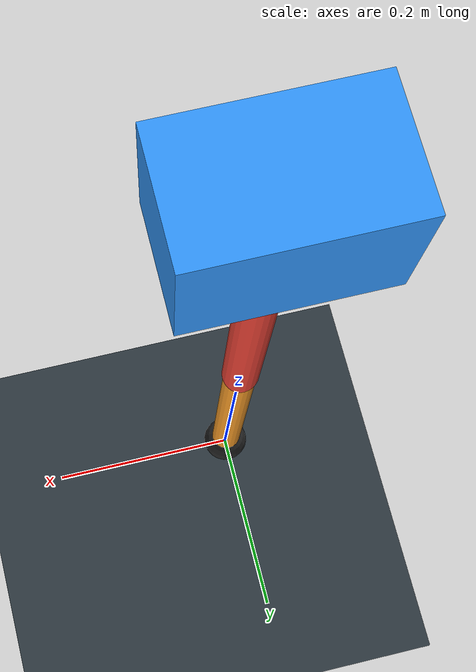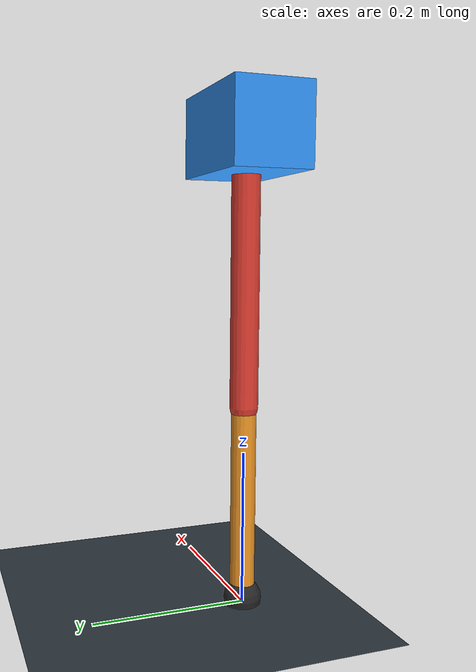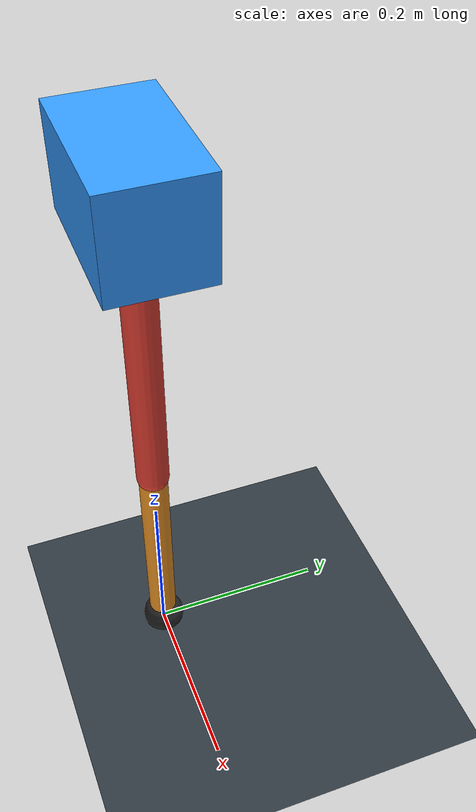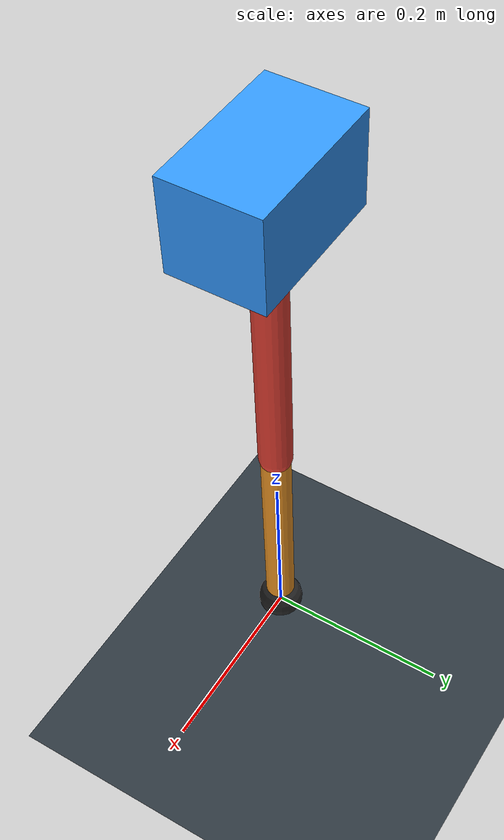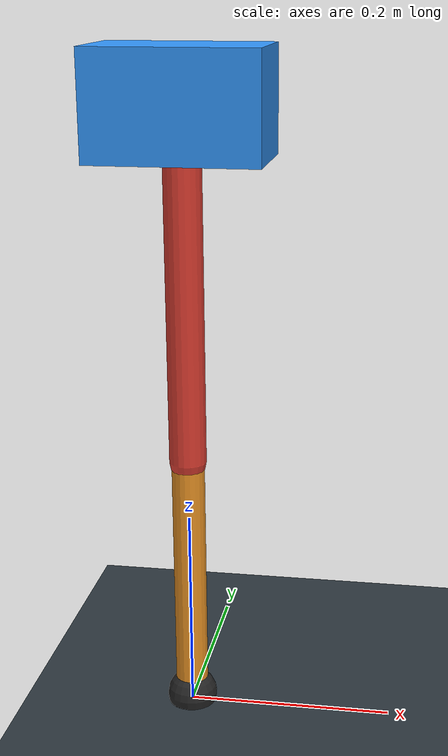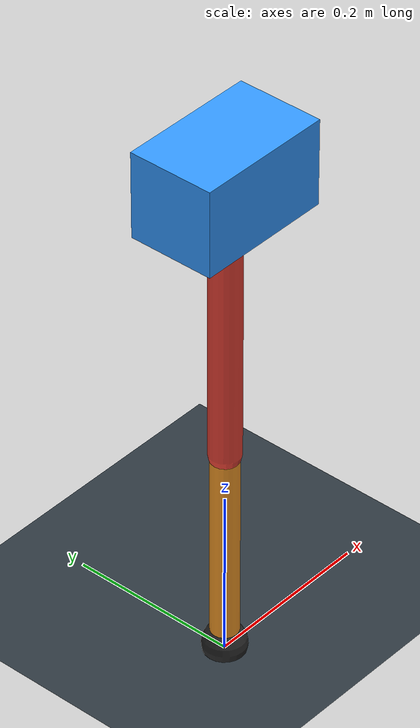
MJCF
<mujoco model="single_axis_two_bar">
  <compiler angle="radian" inertiafromgeom="true"/>
  <option timestep="0.001" integrator="implicitfast" gravity="0 0 -9.81"/>
  <default>
    <joint damping="0.08"/>
    <geom friction="1.2 0.01 0.0001" condim="3"/>
  </default>
  <worldbody>
    <geom name="floor" type="plane" size="5 5 0.1" rgba="0.18 0.22 0.25 1"/>
    <body name="carriage" pos="0 0 0.5994515487796396">
      <joint name="pole_slide" type="slide" axis="0 0 1"/>
      <geom name="payload" type="box" size="0.08 0.05 0.05" mass="3.069000573495867" rgba="0.2 0.6 1 1"/>
      <body name="thigh" pos="0 0 0">
        <joint name="hip" type="hinge" axis="0 1 0"/>
        <geom name="thigh_link" type="capsule" fromto="0 0 0 0 0 -0.3397108287742869" size="0.018" mass="0.24204845438423486" rgba="0.9 0.25 0.2 1"/>
        <body name="shank" pos="0 0 -0.3397108287742869">
          <joint name="knee" type="hinge" axis="0 1 0"/>
          <geom name="shank_link" type="capsule" fromto="0 0 0 0 0 -0.25250726275111474" size="0.016" mass="0.1799147612992647" rgba="0.95 0.6 0.15 1"/>
          <geom name="foot" type="sphere" pos="0 0 -0.25250726275111474" size="0.025" mass="0.03" rgba="0.15 0.15 0.15 1"/>
          <site name="toe" pos="0 0 -0.25250726275111474" size="0.008"/>
        </body>
      </body>
    </body>
  </worldbody>
  <actuator>
    <motor name="hip_motor" joint="hip" ctrlrange="-35.99506028484991 35.99506028484991"/>
    <motor name="knee_motor" joint="knee" ctrlrange="-152.36877717150156 152.36877717150156"/>
  </actuator>
</mujoco>
